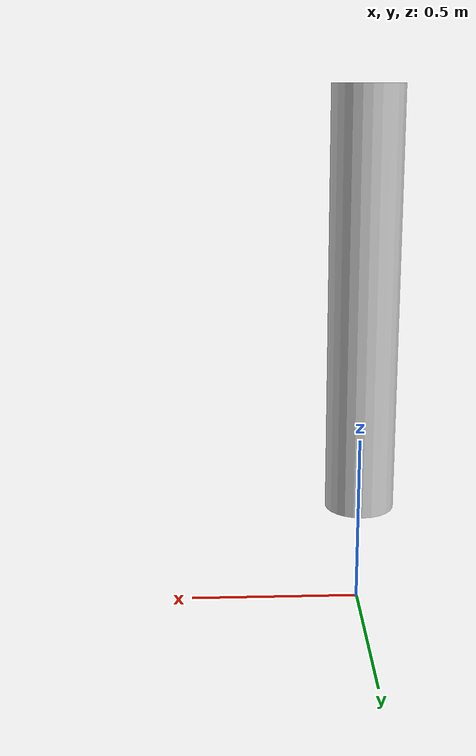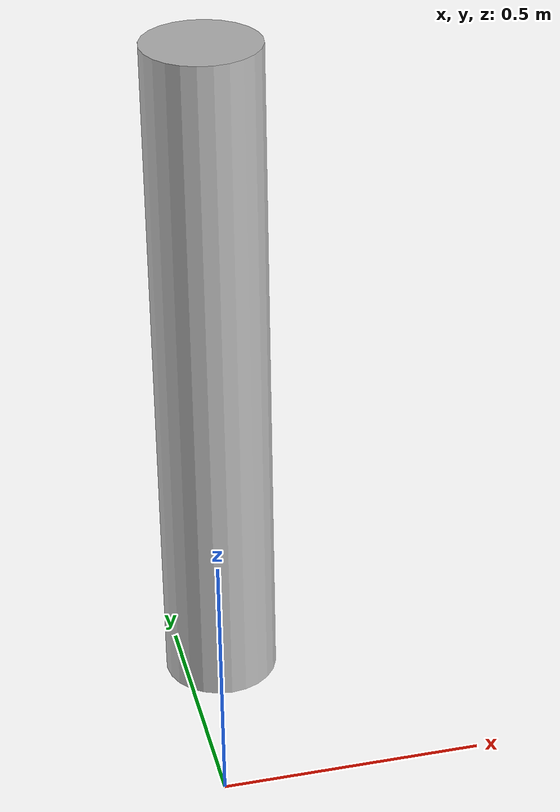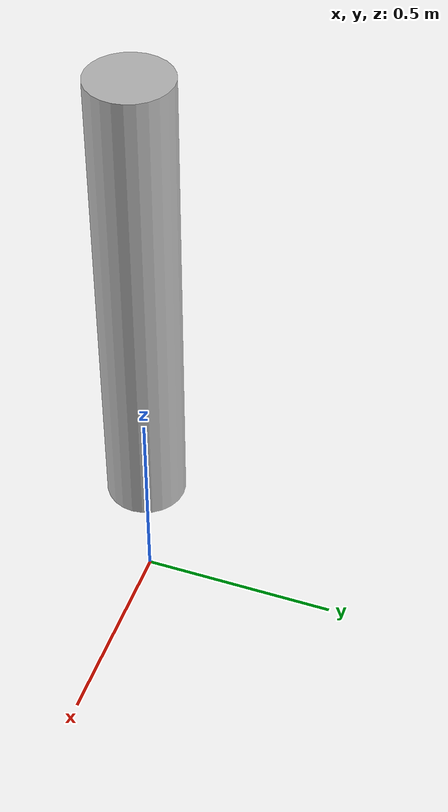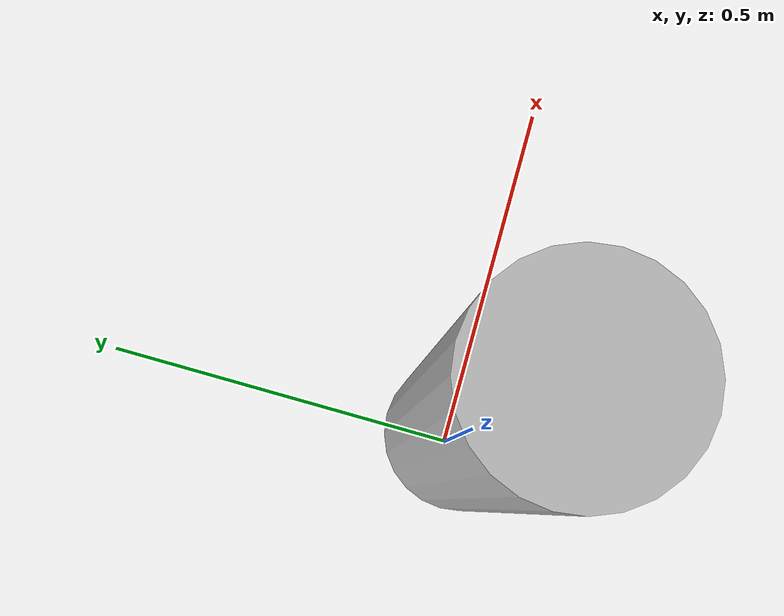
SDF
<?xml version='1.0'?>
<sdf version='1.6'>
		<model name="BodyRefCylinder">
			<self_collide>true</self_collide>
			<pose>0.0 0.0 0.0 0.0 0.0 0.0</pose>
			<!-- Start of parts of the pmodel BodyRefCylinder -->
			<!-- End of parts of the pmodel BodyRefCylinder -->

			<!-- Start of links of the pmodel BodyRefCylinder -->
			<!-- link full name is BodyRefCylinder::Tip -->
			<link name="1-Tip">
					<pose>0.0 0.0 0.0 0.0 0.0 0.0</pose>
					<inertial>
						<pose>0.0 0.0 0.0 0.0 0.0 0.0</pose>
						<inertia>
							<ixx>1.0</ixx>
							<ixy>0.0</ixy>
							<ixz>0.0</ixz>
							<iyy>1.0</iyy>
							<iyz>0.0</iyz>
							<izz>1.0</izz>
						</inertia>
						<mass>1.0</mass>
					</inertial>
					<!-- body full name is BodyRefCylinder::Tip::my_body_ref -->
					<collision name="1--my_body_ref">
						<laser_retro>0.0</laser_retro>
						<pose>0.0 0.0 0.8999999761581421 0.0 0.0 0.0</pose>
						<geometry>
							<cylinder>
								<radius>0.10000000149011612</radius>
								<length>1.2000000476837158</length>
							</cylinder>
						</geometry>
						<surface>
							<bounce>
								<restitution_coefficient>0.0</restitution_coefficient>
								<threshold>100000.0</threshold>
							</bounce>
							<friction>
								<ode>
									<mu>1.0</mu>
									<mu2>1.0</mu2>
									<fdir1>0.0 0.0 0.0</fdir1>
									<slip1>0.0</slip1>
									<slip2>0.0</slip2>
								</ode>
								<torsional>
									<coefficient>1.0</coefficient>
									<surface_radius>0.0</surface_radius>
								</torsional>
							</friction>
						</surface>
					</collision>
					<visual name="1--my_body_ref">
						<laser_retro>0.0</laser_retro>
						<pose>0.0 0.0 0.8999999761581421 0.0 0.0 0.0</pose>
						<geometry>
							<cylinder>
								<radius>0.10000000149011612</radius>
								<length>1.2000000476837158</length>
							</cylinder>
						</geometry>
						<surface>
							<bounce>
								<restitution_coefficient>0.0</restitution_coefficient>
								<threshold>100000.0</threshold>
							</bounce>
							<friction>
								<ode>
									<mu>1.0</mu>
									<mu2>1.0</mu2>
									<fdir1>0.0 0.0 0.0</fdir1>
									<slip1>0.0</slip1>
									<slip2>0.0</slip2>
								</ode>
								<torsional>
									<coefficient>1.0</coefficient>
									<surface_radius>0.0</surface_radius>
								</torsional>
							</friction>
						</surface>
					</visual>
			</link>
			<!-- End of links of the pmodel BodyRefCylinder -->

			<!-- Start of joints of the pmodel BodyRefCylinder -->
			<!-- End of joints of the pmodel BodyRefCylinder -->

			<!-- Start of fixed connections of the pmodel BodyRefCylinder -->
			<!-- End of fixed connections of the pmodel BodyRefCylinder -->
		</model>
</sdf>
